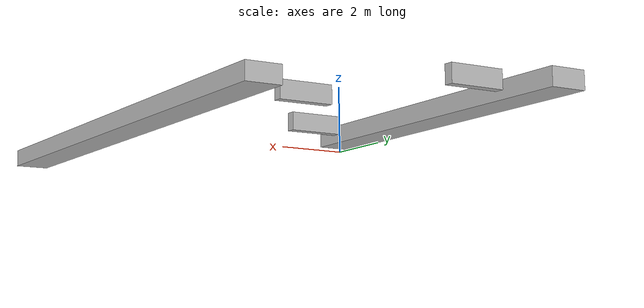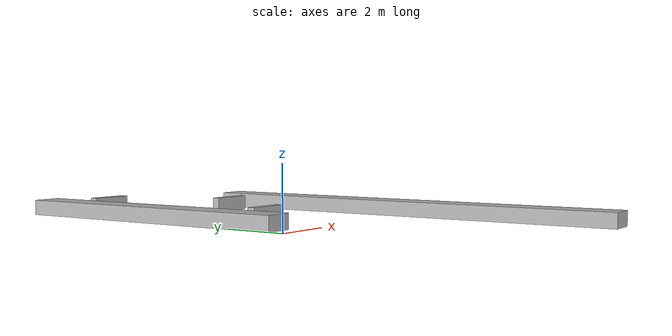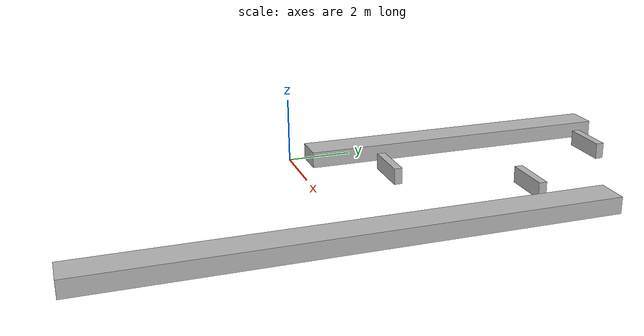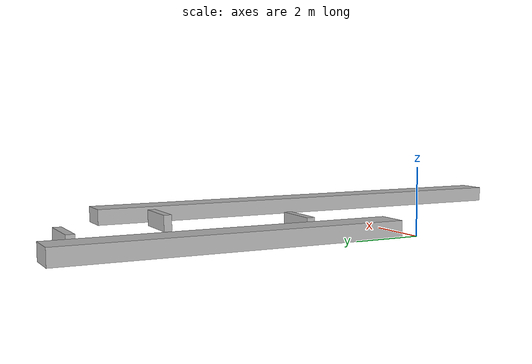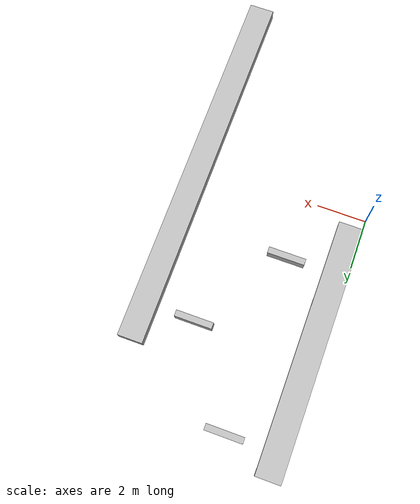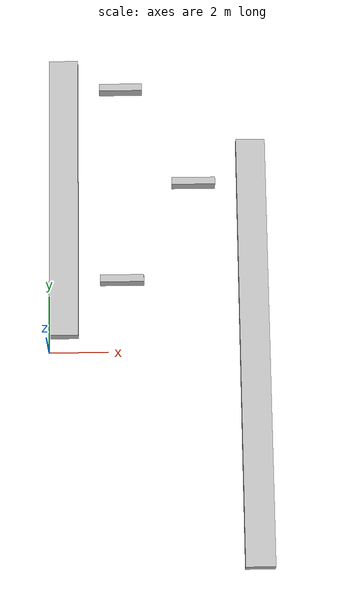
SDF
<?xml version="1.0"?>
<sdf version="1.4">

  <model name="traversability_planner_playground">
    <static>true</static>
    <pose>0.0 0 0 0 0 0</pose>

    <link name='step_1'>
      <pose>0.5 5.5 0.25 0 0 1.5708</pose>
      <collision name='collision'>
        <geometry>
          <box>
            <size>10.0 1.0 0.5</size>
          </box>
        </geometry>
      </collision>
      <visual name='visual'>
        <geometry>
          <box>
            <size>10. 1.0 0.5</size>
          </box>
        </geometry>
      </visual>
    </link>

    <link name='step_2'>
      <pose>7.0 0.0 0.25 0 0 1.5708</pose>
      <collision name='collision'>
        <geometry>
          <box>
            <size>15.0 1.0 0.5</size>
          </box>
        </geometry>
      </collision>
      <visual name='visual'>
        <geometry>
          <box>
            <size>15.0 1.0 0.5</size>
          </box>
        </geometry>
      </visual>
    </link>

    <link name='step_3'>
      <pose>2.5 2.5 0.25 0 0 0.0</pose>
      <collision name='collision'>
        <geometry>
          <box>
            <size>1.5 0.25 0.5</size>
          </box>
        </geometry>
      </collision>
      <visual name='visual'>
        <geometry>
          <box>
            <size>1.5 0.25 0.5</size>
          </box>
        </geometry>
      </visual>
    </link>

    <link name='step_4'>
      <pose>5.0 6.0 0.25 0 0 0.0</pose>
      <collision name='collision'>
        <geometry>
          <box>
            <size>1.5 0.25 0.5</size>
          </box>
        </geometry>
      </collision>
      <visual name='visual'>
        <geometry>
          <box>
            <size>1.5 0.25 0.5</size>
          </box>
        </geometry>
      </visual>
    </link>

    <link name='step_5'>
      <pose>2.5 9.5 0.25 0 0 0.0</pose>
      <collision name='collision'>
        <geometry>
          <box>
            <size>1.5 0.25 0.5</size>
          </box>
        </geometry>
      </collision>
      <visual name='visual'>
        <geometry>
          <box>
            <size>1.5 0.25 0.5</size>
          </box>
        </geometry>
      </visual>
    </link>

  </model>
</sdf>
